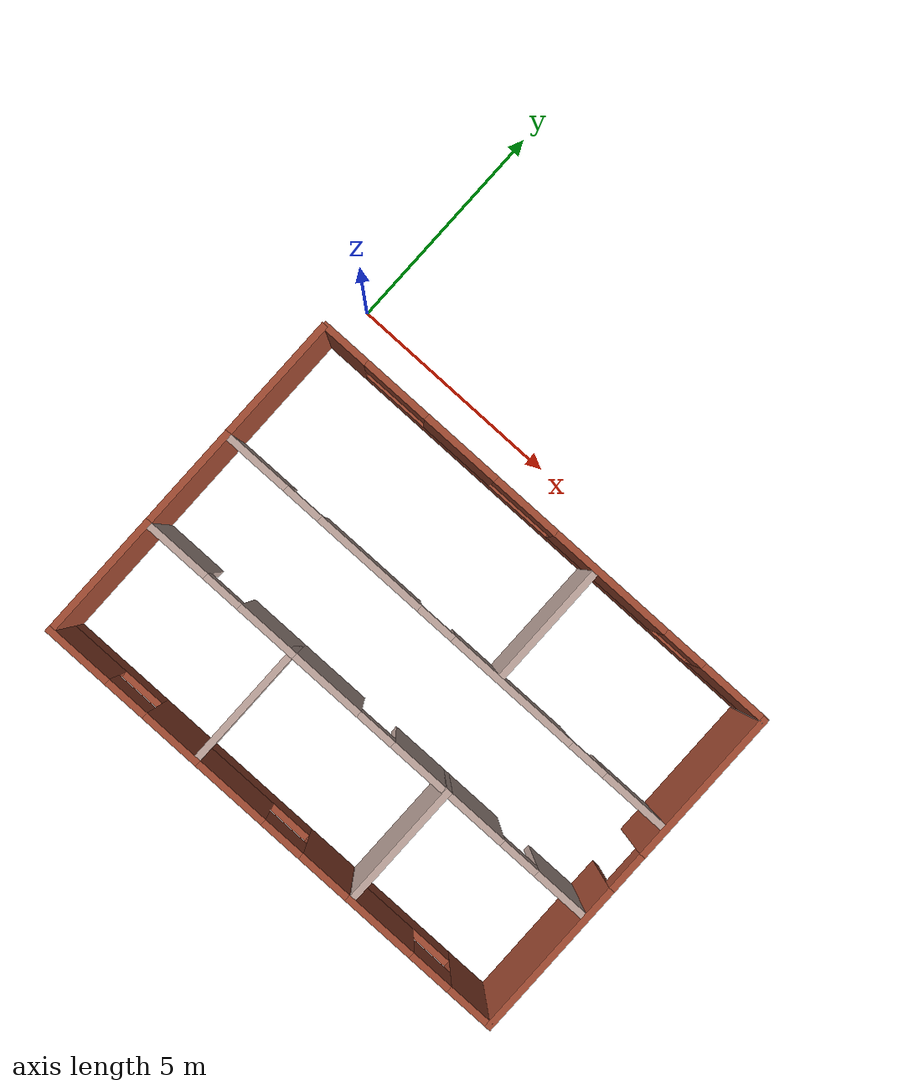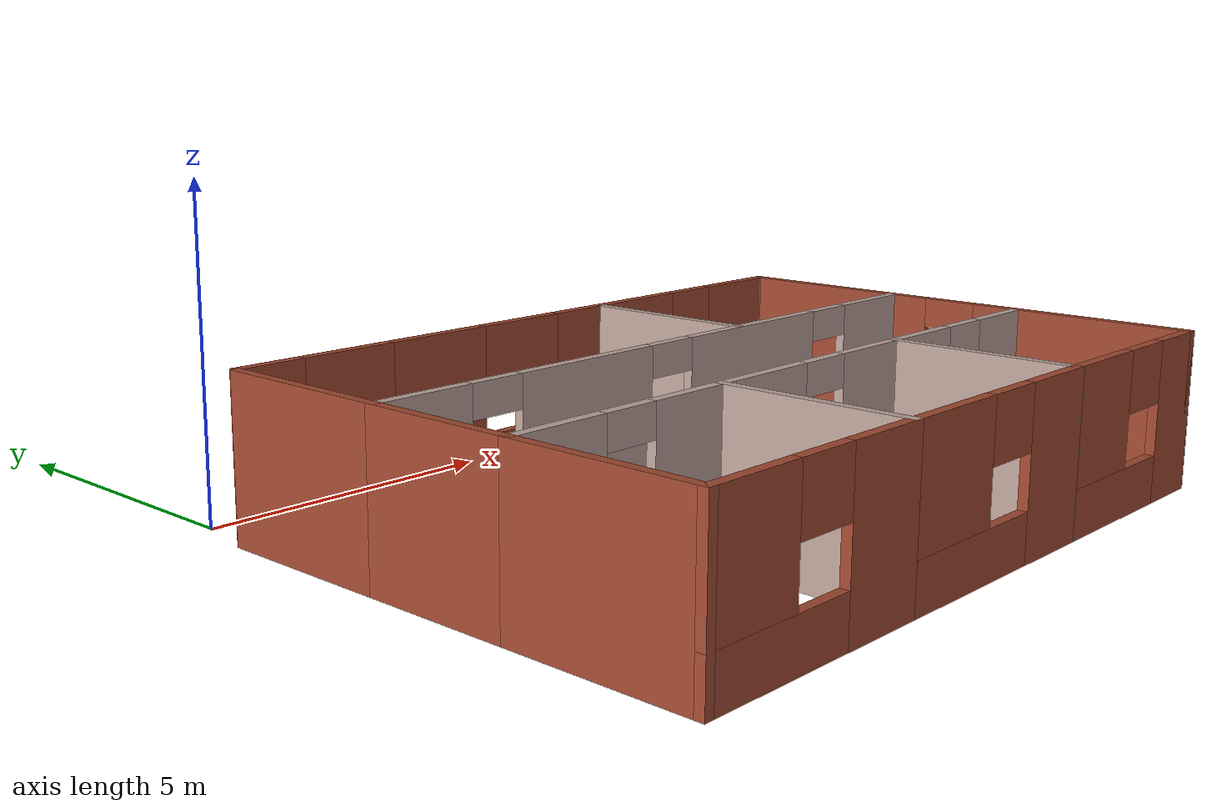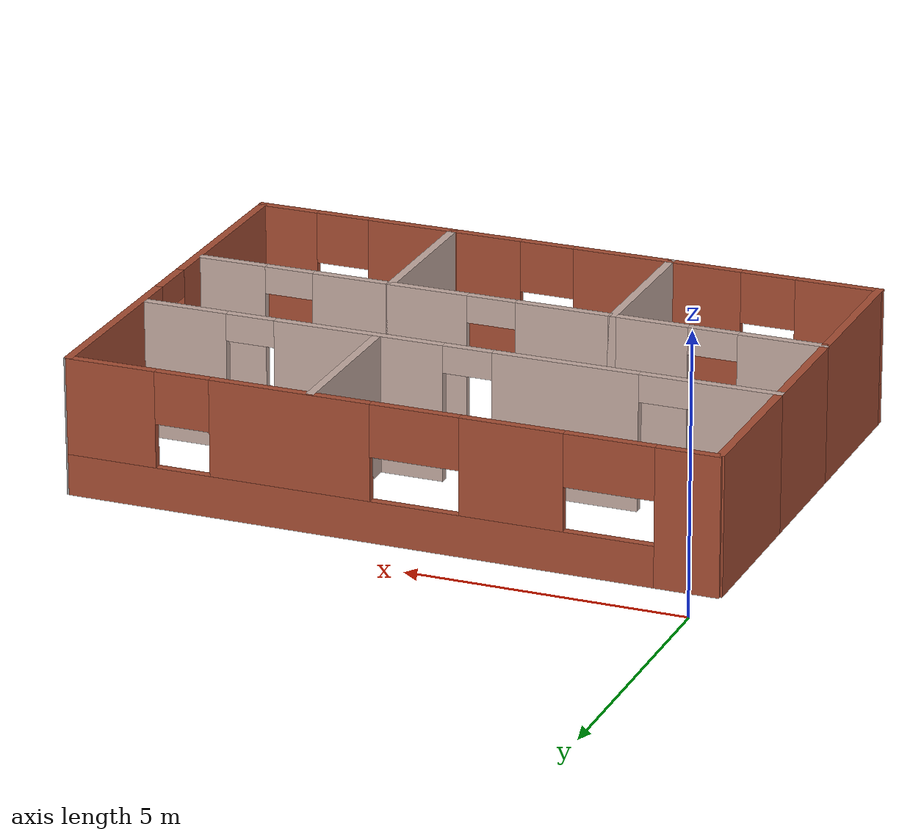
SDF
<?xml version='1.0'?>
<sdf version='1.6'>
  <model name='building1'>
    <pose frame=''>5.68259 -5.05298 0 0 -0 0</pose>
    <link name='Wall_0'>
      <pose frame=''>5.83622 -0.00604 0 0 0 -1.5708</pose>
      <visual name='Wall_0_Visual_0'>
        <pose frame=''>-2.28969 0 1.25 0 -0 0</pose>
        <geometry>
          <box>
            <size>3.67061 0.15 2.5</size>
          </box>
        </geometry>
        <material>
          <script>
            <uri>file://media/materials/scripts/gazebo.material</uri>
            <name>Gazebo/Bricks</name>
          </script>
          <ambient>1 1 1 1</ambient>
        </material>
        <meta>
          <layer>0</layer>
        </meta>
      </visual>
      <collision name='Wall_0_Collision_0'>
        <geometry>
          <box>
            <size>3.67061 0.15 2.5</size>
          </box>
        </geometry>
        <pose frame=''>-2.28969 0 1.25 0 -0 0</pose>
      </collision>
      <visual name='Wall_0_Visual_1'>
        <pose frame=''>2.28531 0 1.25 0 -0 0</pose>
        <geometry>
          <box>
            <size>3.67939 0.15 2.5</size>
          </box>
        </geometry>
        <material>
          <script>
            <uri>file://media/materials/scripts/gazebo.material</uri>
            <name>Gazebo/Bricks</name>
          </script>
          <ambient>1 1 1 1</ambient>
        </material>
        <meta>
          <layer>0</layer>
        </meta>
      </visual>
      <collision name='Wall_0_Collision_1'>
        <geometry>
          <box>
            <size>3.67939 0.15 2.5</size>
          </box>
        </geometry>
        <pose frame=''>2.28531 0 1.25 0 -0 0</pose>
      </collision>
      <visual name='Wall_0_Visual_2'>
        <pose frame=''>-0.004386 0 2.25 0 -0 0</pose>
        <geometry>
          <box>
            <size>0.9 0.15 0.5</size>
          </box>
        </geometry>
        <material>
          <script>
            <uri>file://media/materials/scripts/gazebo.material</uri>
            <name>Gazebo/Bricks</name>
          </script>
          <ambient>1 1 1 1</ambient>
        </material>
        <meta>
          <layer>0</layer>
        </meta>
      </visual>
      <collision name='Wall_0_Collision_2'>
        <geometry>
          <box>
            <size>0.9 0.15 0.5</size>
          </box>
        </geometry>
        <pose frame=''>-0.004386 0 2.25 0 -0 0</pose>
      </collision>
    </link>
    <link name='Wall_11'>
      <pose frame=''>-3.91122 -4.05604 0 0 -0 3.14159</pose>
      <visual name='Wall_11_Visual_0'>
        <pose frame=''>-1.29336 0 1.25 0 -0 0</pose>
        <geometry>
          <box>
            <size>1.41328 0.15 2.5</size>
          </box>
        </geometry>
        <material>
          <script>
            <uri>file://media/materials/scripts/gazebo.material</uri>
            <name>Gazebo/Bricks</name>
          </script>
          <ambient>1 1 1 1</ambient>
        </material>
        <meta>
          <layer>0</layer>
        </meta>
      </visual>
      <collision name='Wall_11_Collision_0'>
        <geometry>
          <box>
            <size>1.41328 0.15 2.5</size>
          </box>
        </geometry>
        <pose frame=''>-1.29336 0 1.25 0 -0 0</pose>
      </collision>
      <visual name='Wall_11_Visual_1'>
        <pose frame=''>0.706639 0 0.375 0 -0 0</pose>
        <geometry>
          <box>
            <size>2.58672 0.15 0.75</size>
          </box>
        </geometry>
        <material>
          <script>
            <uri>file://media/materials/scripts/gazebo.material</uri>
            <name>Gazebo/Bricks</name>
          </script>
          <ambient>1 1 1 1</ambient>
        </material>
        <meta>
          <layer>0</layer>
        </meta>
      </visual>
      <collision name='Wall_11_Collision_1'>
        <geometry>
          <box>
            <size>2.58672 0.15 0.75</size>
          </box>
        </geometry>
        <pose frame=''>0.706639 0 0.375 0 -0 0</pose>
      </collision>
      <visual name='Wall_11_Visual_2'>
        <pose frame=''>1.20664 0 1.625 0 -0 0</pose>
        <geometry>
          <box>
            <size>1.58672 0.15 1.75</size>
          </box>
        </geometry>
        <material>
          <script>
            <uri>file://media/materials/scripts/gazebo.material</uri>
            <name>Gazebo/Bricks</name>
          </script>
          <ambient>1 1 1 1</ambient>
        </material>
        <meta>
          <layer>0</layer>
        </meta>
      </visual>
      <collision name='Wall_11_Collision_2'>
        <geometry>
          <box>
            <size>1.58672 0.15 1.75</size>
          </box>
        </geometry>
        <pose frame=''>1.20664 0 1.625 0 -0 0</pose>
      </collision>
      <visual name='Wall_11_Visual_3'>
        <pose frame=''>-0.086722 0 2.025 0 -0 0</pose>
        <geometry>
          <box>
            <size>1 0.15 0.95</size>
          </box>
        </geometry>
        <material>
          <script>
            <uri>file://media/materials/scripts/gazebo.material</uri>
            <name>Gazebo/Bricks</name>
          </script>
          <ambient>1 1 1 1</ambient>
        </material>
        <meta>
          <layer>0</layer>
        </meta>
      </visual>
      <collision name='Wall_11_Collision_3'>
        <geometry>
          <box>
            <size>1 0.15 0.95</size>
          </box>
        </geometry>
        <pose frame=''>-0.086722 0 2.025 0 -0 0</pose>
      </collision>
    </link>
    <link name='Wall_12'>
      <collision name='Wall_12_Collision'>
        <geometry>
          <box>
            <size>3 0.15 2.5</size>
          </box>
        </geometry>
        <pose frame=''>0 0 1.25 0 -0 0</pose>
      </collision>
      <visual name='Wall_12_Visual'>
        <pose frame=''>0 0 1.25 0 -0 0</pose>
        <geometry>
          <box>
            <size>3 0.15 2.5</size>
          </box>
        </geometry>
        <material>
          <script>
            <uri>file://media/materials/scripts/gazebo.material</uri>
            <name>Gazebo/Bricks</name>
          </script>
          <ambient>1 1 1 1</ambient>
        </material>
        <meta>
          <layer>0</layer>
        </meta>
      </visual>
      <pose frame=''>-5.83622 -2.63104 0 0 -0 1.5708</pose>
    </link>
    <link name='Wall_13'>
      <pose frame=''>-3.91122 -1.20604 0 0 -0 0</pose>
      <visual name='Wall_13_Visual_0'>
        <pose frame=''>-1.18164 0 1.25 0 -0 0</pose>
        <geometry>
          <box>
            <size>1.63672 0.15 2.5</size>
          </box>
        </geometry>
        <material>
          <script>
            <uri>file://media/materials/scripts/gazebo.material</uri>
            <name>Gazebo/Grey</name>
          </script>
          <ambient>0.760784 0.662745 0.627451 1</ambient>
        </material>
        <meta>
          <layer>0</layer>
        </meta>
      </visual>
      <collision name='Wall_13_Collision_0'>
        <geometry>
          <box>
            <size>1.63672 0.15 2.5</size>
          </box>
        </geometry>
        <pose frame=''>-1.18164 0 1.25 0 -0 0</pose>
      </collision>
      <visual name='Wall_13_Visual_1'>
        <pose frame=''>1.26836 0 1.25 0 -0 0</pose>
        <geometry>
          <box>
            <size>1.46328 0.15 2.5</size>
          </box>
        </geometry>
        <material>
          <script>
            <uri>file://media/materials/scripts/gazebo.material</uri>
            <name>Gazebo/Grey</name>
          </script>
          <ambient>0.760784 0.662745 0.627451 1</ambient>
        </material>
        <meta>
          <layer>0</layer>
        </meta>
      </visual>
      <collision name='Wall_13_Collision_1'>
        <geometry>
          <box>
            <size>1.46328 0.15 2.5</size>
          </box>
        </geometry>
        <pose frame=''>1.26836 0 1.25 0 -0 0</pose>
      </collision>
      <visual name='Wall_13_Visual_2'>
        <pose frame=''>0.086722 0 2.25 0 -0 0</pose>
        <geometry>
          <box>
            <size>0.9 0.15 0.5</size>
          </box>
        </geometry>
        <material>
          <script>
            <uri>file://media/materials/scripts/gazebo.material</uri>
            <name>Gazebo/Grey</name>
          </script>
          <ambient>0.760784 0.662745 0.627451 1</ambient>
        </material>
        <meta>
          <layer>0</layer>
        </meta>
      </visual>
      <collision name='Wall_13_Collision_2'>
        <geometry>
          <box>
            <size>0.9 0.15 0.5</size>
          </box>
        </geometry>
        <pose frame=''>0.086722 0 2.25 0 -0 0</pose>
      </collision>
    </link>
    <link name='Wall_15'>
      <collision name='Wall_15_Collision'>
        <geometry>
          <box>
            <size>2.5 0.15 2.5</size>
          </box>
        </geometry>
        <pose frame=''>0 0 1.25 0 -0 0</pose>
      </collision>
      <visual name='Wall_15_Visual'>
        <pose frame=''>0 0 1.25 0 -0 0</pose>
        <geometry>
          <box>
            <size>2.5 0.15 2.5</size>
          </box>
        </geometry>
        <material>
          <script>
            <uri>file://media/materials/scripts/gazebo.material</uri>
            <name>Gazebo/Bricks</name>
          </script>
          <ambient>1 1 1 1</ambient>
        </material>
        <meta>
          <layer>0</layer>
        </meta>
      </visual>
      <pose frame=''>-5.83622 -0.03104 0 0 -0 1.5708</pose>
    </link>
    <link name='Wall_16'>
      <pose frame=''>-0.036216 1.14396 0 0 -0 0</pose>
      <visual name='Wall_16_Visual_0'>
        <pose frame=''>-5.04789 0 1.25 0 -0 0</pose>
        <geometry>
          <box>
            <size>1.65421 0.15 2.5</size>
          </box>
        </geometry>
        <material>
          <script>
            <uri>file://media/materials/scripts/gazebo.material</uri>
            <name>Gazebo/Grey</name>
          </script>
          <ambient>0.760784 0.662745 0.627451 1</ambient>
        </material>
        <meta>
          <layer>0</layer>
        </meta>
      </visual>
      <collision name='Wall_16_Collision_0'>
        <geometry>
          <box>
            <size>1.65421 0.15 2.5</size>
          </box>
        </geometry>
        <pose frame=''>-5.04789 0 1.25 0 -0 0</pose>
      </collision>
      <visual name='Wall_16_Visual_1'>
        <pose frame=''>-1.99555 0 1.25 0 -0 0</pose>
        <geometry>
          <box>
            <size>2.65048 0.15 2.5</size>
          </box>
        </geometry>
        <material>
          <script>
            <uri>file://media/materials/scripts/gazebo.material</uri>
            <name>Gazebo/Grey</name>
          </script>
          <ambient>0.760784 0.662745 0.627451 1</ambient>
        </material>
        <meta>
          <layer>0</layer>
        </meta>
      </visual>
      <collision name='Wall_16_Collision_1'>
        <geometry>
          <box>
            <size>2.65048 0.15 2.5</size>
          </box>
        </geometry>
        <pose frame=''>-1.99555 0 1.25 0 -0 0</pose>
      </collision>
      <visual name='Wall_16_Visual_2'>
        <pose frame=''>1.79105 0 1.25 0 -0 0</pose>
        <geometry>
          <box>
            <size>3.12271 0.15 2.5</size>
          </box>
        </geometry>
        <material>
          <script>
            <uri>file://media/materials/scripts/gazebo.material</uri>
            <name>Gazebo/Grey</name>
          </script>
          <ambient>0.760784 0.662745 0.627451 1</ambient>
        </material>
        <meta>
          <layer>0</layer>
        </meta>
      </visual>
      <collision name='Wall_16_Collision_2'>
        <geometry>
          <box>
            <size>3.12271 0.15 2.5</size>
          </box>
        </geometry>
        <pose frame=''>1.79105 0 1.25 0 -0 0</pose>
      </collision>
      <visual name='Wall_16_Visual_3'>
        <pose frame=''>5.0637 0 1.25 0 -0 0</pose>
        <geometry>
          <box>
            <size>1.62259 0.15 2.5</size>
          </box>
        </geometry>
        <material>
          <script>
            <uri>file://media/materials/scripts/gazebo.material</uri>
            <name>Gazebo/Grey</name>
          </script>
          <ambient>0.760784 0.662745 0.627451 1</ambient>
        </material>
        <meta>
          <layer>0</layer>
        </meta>
      </visual>
      <collision name='Wall_16_Collision_3'>
        <geometry>
          <box>
            <size>1.62259 0.15 2.5</size>
          </box>
        </geometry>
        <pose frame=''>5.0637 0 1.25 0 -0 0</pose>
      </collision>
      <visual name='Wall_16_Visual_4'>
        <pose frame=''>-3.77079 0 2.25 0 -0 0</pose>
        <geometry>
          <box>
            <size>0.9 0.15 0.5</size>
          </box>
        </geometry>
        <material>
          <script>
            <uri>file://media/materials/scripts/gazebo.material</uri>
            <name>Gazebo/Grey</name>
          </script>
          <ambient>0.760784 0.662745 0.627451 1</ambient>
        </material>
        <meta>
          <layer>0</layer>
        </meta>
      </visual>
      <collision name='Wall_16_Collision_4'>
        <geometry>
          <box>
            <size>0.9 0.15 0.5</size>
          </box>
        </geometry>
        <pose frame=''>-3.77079 0 2.25 0 -0 0</pose>
      </collision>
      <visual name='Wall_16_Visual_5'>
        <pose frame=''>-0.220305 0 2.25 0 -0 0</pose>
        <geometry>
          <box>
            <size>0.9 0.15 0.5</size>
          </box>
        </geometry>
        <material>
          <script>
            <uri>file://media/materials/scripts/gazebo.material</uri>
            <name>Gazebo/Grey</name>
          </script>
          <ambient>0.760784 0.662745 0.627451 1</ambient>
        </material>
        <meta>
          <layer>0</layer>
        </meta>
      </visual>
      <collision name='Wall_16_Collision_5'>
        <geometry>
          <box>
            <size>0.9 0.15 0.5</size>
          </box>
        </geometry>
        <pose frame=''>-0.220305 0 2.25 0 -0 0</pose>
      </collision>
      <visual name='Wall_16_Visual_6'>
        <pose frame=''>3.80241 0 2.25 0 -0 0</pose>
        <geometry>
          <box>
            <size>0.9 0.15 0.5</size>
          </box>
        </geometry>
        <material>
          <script>
            <uri>file://media/materials/scripts/gazebo.material</uri>
            <name>Gazebo/Grey</name>
          </script>
          <ambient>0.760784 0.662745 0.627451 1</ambient>
        </material>
        <meta>
          <layer>0</layer>
        </meta>
      </visual>
      <collision name='Wall_16_Collision_6'>
        <geometry>
          <box>
            <size>0.9 0.15 0.5</size>
          </box>
        </geometry>
        <pose frame=''>3.80241 0 2.25 0 -0 0</pose>
      </collision>
    </link>
    <link name='Wall_22'>
      <collision name='Wall_22_Collision'>
        <geometry>
          <box>
            <size>3 0.15 2.5</size>
          </box>
        </geometry>
        <pose frame=''>0 0 1.25 0 -0 0</pose>
      </collision>
      <visual name='Wall_22_Visual'>
        <pose frame=''>0 0 1.25 0 -0 0</pose>
        <geometry>
          <box>
            <size>3 0.15 2.5</size>
          </box>
        </geometry>
        <material>
          <script>
            <uri>file://media/materials/scripts/gazebo.material</uri>
            <name>Gazebo/Bricks</name>
          </script>
          <ambient>1 1 1 1</ambient>
        </material>
        <meta>
          <layer>0</layer>
        </meta>
      </visual>
      <pose frame=''>-5.83622 2.56896 0 0 -0 1.5708</pose>
    </link>
    <link name='Wall_24'>
      <collision name='Wall_24_Collision'>
        <geometry>
          <box>
            <size>0.15 0.15 2.5</size>
          </box>
        </geometry>
        <pose frame=''>0 0 1.25 0 -0 0</pose>
      </collision>
      <visual name='Wall_24_Visual'>
        <pose frame=''>0 0 1.25 0 -0 0</pose>
        <geometry>
          <box>
            <size>0.15 0.15 2.5</size>
          </box>
        </geometry>
        <material>
          <script>
            <uri>file://media/materials/scripts/gazebo.material</uri>
            <name>Gazebo/Grey</name>
          </script>
          <ambient>1 1 1 1</ambient>
        </material>
        <meta>
          <layer>0</layer>
        </meta>
      </visual>
      <pose frame=''>5.83622 4.04396 0 0 -0 0</pose>
    </link>
    <link name='Wall_28'>
      <pose frame=''>-0.000871 4.05604 0 0 -0 0</pose>
      <visual name='Wall_28_Visual_0'>
        <pose frame=''>-5.30178 0 1.25 0 -0 0</pose>
        <geometry>
          <box>
            <size>1.14644 0.15 2.5</size>
          </box>
        </geometry>
        <material>
          <script>
            <uri>file://media/materials/scripts/gazebo.material</uri>
            <name>Gazebo/Bricks</name>
          </script>
          <ambient>1 1 1 1</ambient>
        </material>
        <meta>
          <layer>0</layer>
        </meta>
      </visual>
      <collision name='Wall_28_Collision_0'>
        <geometry>
          <box>
            <size>1.14644 0.15 2.5</size>
          </box>
        </geometry>
        <pose frame=''>-5.30178 0 1.25 0 -0 0</pose>
      </collision>
      <visual name='Wall_28_Visual_1'>
        <pose frame=''>0.573218 0 0.375 0 -0 0</pose>
        <geometry>
          <box>
            <size>10.6036 0.15 0.75</size>
          </box>
        </geometry>
        <material>
          <script>
            <uri>file://media/materials/scripts/gazebo.material</uri>
            <name>Gazebo/Bricks</name>
          </script>
          <ambient>1 1 1 1</ambient>
        </material>
        <meta>
          <layer>0</layer>
        </meta>
      </visual>
      <collision name='Wall_28_Collision_1'>
        <geometry>
          <box>
            <size>10.6036 0.15 0.75</size>
          </box>
        </geometry>
        <pose frame=''>0.573218 0 0.375 0 -0 0</pose>
      </collision>
      <visual name='Wall_28_Visual_2'>
        <pose frame=''>-2.20579 0 1.625 0 -0 0</pose>
        <geometry>
          <box>
            <size>1.84554 0.15 1.75</size>
          </box>
        </geometry>
        <material>
          <script>
            <uri>file://media/materials/scripts/gazebo.material</uri>
            <name>Gazebo/Bricks</name>
          </script>
          <ambient>1 1 1 1</ambient>
        </material>
        <meta>
          <layer>0</layer>
        </meta>
      </visual>
      <collision name='Wall_28_Collision_2'>
        <geometry>
          <box>
            <size>1.84554 0.15 1.75</size>
          </box>
        </geometry>
        <pose frame=''>-2.20579 0 1.625 0 -0 0</pose>
      </collision>
      <visual name='Wall_28_Visual_3'>
        <pose frame=''>1.77453 0 1.625 0 -0 0</pose>
        <geometry>
          <box>
            <size>2.91511 0.15 1.75</size>
          </box>
        </geometry>
        <material>
          <script>
            <uri>file://media/materials/scripts/gazebo.material</uri>
            <name>Gazebo/Bricks</name>
          </script>
          <ambient>1 1 1 1</ambient>
        </material>
        <meta>
          <layer>0</layer>
        </meta>
      </visual>
      <collision name='Wall_28_Collision_3'>
        <geometry>
          <box>
            <size>2.91511 0.15 1.75</size>
          </box>
        </geometry>
        <pose frame=''>1.77453 0 1.625 0 -0 0</pose>
      </collision>
      <visual name='Wall_28_Visual_4'>
        <pose frame=''>5.05354 0 1.625 0 -0 0</pose>
        <geometry>
          <box>
            <size>1.64292 0.15 1.75</size>
          </box>
        </geometry>
        <material>
          <script>
            <uri>file://media/materials/scripts/gazebo.material</uri>
            <name>Gazebo/Bricks</name>
          </script>
          <ambient>1 1 1 1</ambient>
        </material>
        <meta>
          <layer>0</layer>
        </meta>
      </visual>
      <collision name='Wall_28_Collision_4'>
        <geometry>
          <box>
            <size>1.64292 0.15 1.75</size>
          </box>
        </geometry>
        <pose frame=''>5.05354 0 1.625 0 -0 0</pose>
      </collision>
      <visual name='Wall_28_Visual_5'>
        <pose frame=''>-3.92856 0 2.025 0 -0 0</pose>
        <geometry>
          <box>
            <size>1.6 0.15 0.95</size>
          </box>
        </geometry>
        <material>
          <script>
            <uri>file://media/materials/scripts/gazebo.material</uri>
            <name>Gazebo/Bricks</name>
          </script>
          <ambient>1 1 1 1</ambient>
        </material>
        <meta>
          <layer>0</layer>
        </meta>
      </visual>
      <collision name='Wall_28_Collision_5'>
        <geometry>
          <box>
            <size>1.6 0.15 0.95</size>
          </box>
        </geometry>
        <pose frame=''>-3.92856 0 2.025 0 -0 0</pose>
      </collision>
      <visual name='Wall_28_Visual_6'>
        <pose frame=''>-0.483021 0 2.025 0 -0 0</pose>
        <geometry>
          <box>
            <size>1.6 0.15 0.95</size>
          </box>
        </geometry>
        <material>
          <script>
            <uri>file://media/materials/scripts/gazebo.material</uri>
            <name>Gazebo/Bricks</name>
          </script>
          <ambient>1 1 1 1</ambient>
        </material>
        <meta>
          <layer>0</layer>
        </meta>
      </visual>
      <collision name='Wall_28_Collision_6'>
        <geometry>
          <box>
            <size>1.6 0.15 0.95</size>
          </box>
        </geometry>
        <pose frame=''>-0.483021 0 2.025 0 -0 0</pose>
      </collision>
      <visual name='Wall_28_Visual_7'>
        <pose frame=''>3.73208 0 2.025 0 -0 0</pose>
        <geometry>
          <box>
            <size>1 0.15 0.95</size>
          </box>
        </geometry>
        <material>
          <script>
            <uri>file://media/materials/scripts/gazebo.material</uri>
            <name>Gazebo/Bricks</name>
          </script>
          <ambient>1 1 1 1</ambient>
        </material>
        <meta>
          <layer>0</layer>
        </meta>
      </visual>
      <collision name='Wall_28_Collision_7'>
        <geometry>
          <box>
            <size>1 0.15 0.95</size>
          </box>
        </geometry>
        <pose frame=''>3.73208 0 2.025 0 -0 0</pose>
      </collision>
    </link>
    <link name='Wall_3'>
      <pose frame=''>3.97243 -4.05604 0 0 -0 3.14159</pose>
      <visual name='Wall_3_Visual_0'>
        <pose frame=''>-1.35239 0 1.25 0 -0 0</pose>
        <geometry>
          <box>
            <size>1.13781 0.15 2.5</size>
          </box>
        </geometry>
        <material>
          <script>
            <uri>file://media/materials/scripts/gazebo.material</uri>
            <name>Gazebo/Bricks</name>
          </script>
          <ambient>1 1 1 1</ambient>
        </material>
        <meta>
          <layer>0</layer>
        </meta>
      </visual>
      <collision name='Wall_3_Collision_0'>
        <geometry>
          <box>
            <size>1.13781 0.15 2.5</size>
          </box>
        </geometry>
        <pose frame=''>-1.35239 0 1.25 0 -0 0</pose>
      </collision>
      <visual name='Wall_3_Visual_1'>
        <pose frame=''>0.568905 0 0.375 0 -0 0</pose>
        <geometry>
          <box>
            <size>2.70478 0.15 0.75</size>
          </box>
        </geometry>
        <material>
          <script>
            <uri>file://media/materials/scripts/gazebo.material</uri>
            <name>Gazebo/Bricks</name>
          </script>
          <ambient>1 1 1 1</ambient>
        </material>
        <meta>
          <layer>0</layer>
        </meta>
      </visual>
      <collision name='Wall_3_Collision_1'>
        <geometry>
          <box>
            <size>2.70478 0.15 0.75</size>
          </box>
        </geometry>
        <pose frame=''>0.568905 0 0.375 0 -0 0</pose>
      </collision>
      <visual name='Wall_3_Visual_2'>
        <pose frame=''>1.0689 0 1.625 0 -0 0</pose>
        <geometry>
          <box>
            <size>1.70478 0.15 1.75</size>
          </box>
        </geometry>
        <material>
          <script>
            <uri>file://media/materials/scripts/gazebo.material</uri>
            <name>Gazebo/Bricks</name>
          </script>
          <ambient>1 1 1 1</ambient>
        </material>
        <meta>
          <layer>0</layer>
        </meta>
      </visual>
      <collision name='Wall_3_Collision_2'>
        <geometry>
          <box>
            <size>1.70478 0.15 1.75</size>
          </box>
        </geometry>
        <pose frame=''>1.0689 0 1.625 0 -0 0</pose>
      </collision>
      <visual name='Wall_3_Visual_3'>
        <pose frame=''>-0.283484 0 2.025 0 -0 0</pose>
        <geometry>
          <box>
            <size>1 0.15 0.95</size>
          </box>
        </geometry>
        <material>
          <script>
            <uri>file://media/materials/scripts/gazebo.material</uri>
            <name>Gazebo/Bricks</name>
          </script>
          <ambient>1 1 1 1</ambient>
        </material>
        <meta>
          <layer>0</layer>
        </meta>
      </visual>
      <collision name='Wall_3_Collision_3'>
        <geometry>
          <box>
            <size>1 0.15 0.95</size>
          </box>
        </geometry>
        <pose frame=''>-0.283484 0 2.025 0 -0 0</pose>
      </collision>
    </link>
    <link name='Wall_30'>
      <collision name='Wall_30_Collision'>
        <geometry>
          <box>
            <size>3 0.15 2.5</size>
          </box>
        </geometry>
        <pose frame=''>0 0 1.25 0 -0 0</pose>
      </collision>
      <visual name='Wall_30_Visual'>
        <pose frame=''>0 0 1.25 0 -0 0</pose>
        <geometry>
          <box>
            <size>3 0.15 2.5</size>
          </box>
        </geometry>
        <material>
          <script>
            <uri>file://media/materials/scripts/gazebo.material</uri>
            <name>Gazebo/Grey</name>
          </script>
          <ambient>0.760784 0.662745 0.627451 1</ambient>
        </material>
        <meta>
          <layer>0</layer>
        </meta>
      </visual>
      <pose frame=''>1.40504 2.59518 0 0 -0 1.5708</pose>
    </link>
    <link name='Wall_4'>
      <collision name='Wall_4_Collision'>
        <geometry>
          <box>
            <size>3 0.15 2.5</size>
          </box>
        </geometry>
        <pose frame=''>0 0 1.25 0 -0 0</pose>
      </collision>
      <visual name='Wall_4_Visual'>
        <pose frame=''>0 0 1.25 0 -0 0</pose>
        <geometry>
          <box>
            <size>3 0.15 2.5</size>
          </box>
        </geometry>
        <material>
          <script>
            <uri>file://media/materials/scripts/gazebo.material</uri>
            <name>Gazebo/Grey</name>
          </script>
          <ambient>0.760784 0.662745 0.627451 1</ambient>
        </material>
        <meta>
          <layer>0</layer>
        </meta>
      </visual>
      <pose frame=''>2.14363 -2.63104 0 0 -0 1.5708</pose>
    </link>
    <link name='Wall_5'>
      <pose frame=''>3.91996 -1.20604 0 0 -0 0</pose>
      <visual name='Wall_5_Visual_0'>
        <pose frame=''>-1.08763 0 1.25 0 -0 0</pose>
        <geometry>
          <box>
            <size>1.56239 0.15 2.5</size>
          </box>
        </geometry>
        <material>
          <script>
            <uri>file://media/materials/scripts/gazebo.material</uri>
            <name>Gazebo/Grey</name>
          </script>
          <ambient>0.760784 0.662745 0.627451 1</ambient>
        </material>
        <meta>
          <layer>0</layer>
        </meta>
      </visual>
      <collision name='Wall_5_Collision_0'>
        <geometry>
          <box>
            <size>1.56239 0.15 2.5</size>
          </box>
        </geometry>
        <pose frame=''>-1.08763 0 1.25 0 -0 0</pose>
      </collision>
      <visual name='Wall_5_Visual_1'>
        <pose frame=''>1.23119 0 1.25 0 -0 0</pose>
        <geometry>
          <box>
            <size>1.27526 0.15 2.5</size>
          </box>
        </geometry>
        <material>
          <script>
            <uri>file://media/materials/scripts/gazebo.material</uri>
            <name>Gazebo/Grey</name>
          </script>
          <ambient>0.760784 0.662745 0.627451 1</ambient>
        </material>
        <meta>
          <layer>0</layer>
        </meta>
      </visual>
      <collision name='Wall_5_Collision_1'>
        <geometry>
          <box>
            <size>1.27526 0.15 2.5</size>
          </box>
        </geometry>
        <pose frame=''>1.23119 0 1.25 0 -0 0</pose>
      </collision>
      <visual name='Wall_5_Visual_2'>
        <pose frame=''>0.143564 0 2.25 0 -0 0</pose>
        <geometry>
          <box>
            <size>0.9 0.15 0.5</size>
          </box>
        </geometry>
        <material>
          <script>
            <uri>file://media/materials/scripts/gazebo.material</uri>
            <name>Gazebo/Grey</name>
          </script>
          <ambient>0.760784 0.662745 0.627451 1</ambient>
        </material>
        <meta>
          <layer>0</layer>
        </meta>
      </visual>
      <collision name='Wall_5_Collision_2'>
        <geometry>
          <box>
            <size>0.9 0.15 0.5</size>
          </box>
        </geometry>
        <pose frame=''>0.143564 0 2.25 0 -0 0</pose>
      </collision>
    </link>
    <link name='Wall_7'>
      <pose frame=''>0.06996 -4.05604 0 0 -0 3.14159</pose>
      <visual name='Wall_7_Visual_0'>
        <pose frame=''>-1.44093 0 1.25 0 -0 0</pose>
        <geometry>
          <box>
            <size>1.38048 0.15 2.5</size>
          </box>
        </geometry>
        <material>
          <script>
            <uri>file://media/materials/scripts/gazebo.material</uri>
            <name>Gazebo/Bricks</name>
          </script>
          <ambient>1 1 1 1</ambient>
        </material>
        <meta>
          <layer>0</layer>
        </meta>
      </visual>
      <collision name='Wall_7_Collision_0'>
        <geometry>
          <box>
            <size>1.38048 0.15 2.5</size>
          </box>
        </geometry>
        <pose frame=''>-1.44093 0 1.25 0 -0 0</pose>
      </collision>
      <visual name='Wall_7_Visual_1'>
        <pose frame=''>0.690242 0 0.375 0 -0 0</pose>
        <geometry>
          <box>
            <size>2.88187 0.15 0.75</size>
          </box>
        </geometry>
        <material>
          <script>
            <uri>file://media/materials/scripts/gazebo.material</uri>
            <name>Gazebo/Bricks</name>
          </script>
          <ambient>1 1 1 1</ambient>
        </material>
        <meta>
          <layer>0</layer>
        </meta>
      </visual>
      <collision name='Wall_7_Collision_1'>
        <geometry>
          <box>
            <size>2.88187 0.15 0.75</size>
          </box>
        </geometry>
        <pose frame=''>0.690242 0 0.375 0 -0 0</pose>
      </collision>
      <visual name='Wall_7_Visual_2'>
        <pose frame=''>1.19024 0 1.625 0 -0 0</pose>
        <geometry>
          <box>
            <size>1.88187 0.15 1.75</size>
          </box>
        </geometry>
        <material>
          <script>
            <uri>file://media/materials/scripts/gazebo.material</uri>
            <name>Gazebo/Bricks</name>
          </script>
          <ambient>1 1 1 1</ambient>
        </material>
        <meta>
          <layer>0</layer>
        </meta>
      </visual>
      <collision name='Wall_7_Collision_2'>
        <geometry>
          <box>
            <size>1.88187 0.15 1.75</size>
          </box>
        </geometry>
        <pose frame=''>1.19024 0 1.625 0 -0 0</pose>
      </collision>
      <visual name='Wall_7_Visual_3'>
        <pose frame=''>-0.250691 0 2.025 0 -0 0</pose>
        <geometry>
          <box>
            <size>1 0.15 0.95</size>
          </box>
        </geometry>
        <material>
          <script>
            <uri>file://media/materials/scripts/gazebo.material</uri>
            <name>Gazebo/Bricks</name>
          </script>
          <ambient>1 1 1 1</ambient>
        </material>
        <meta>
          <layer>0</layer>
        </meta>
      </visual>
      <collision name='Wall_7_Collision_3'>
        <geometry>
          <box>
            <size>1 0.15 0.95</size>
          </box>
        </geometry>
        <pose frame=''>-0.250691 0 2.025 0 -0 0</pose>
      </collision>
    </link>
    <link name='Wall_8'>
      <collision name='Wall_8_Collision'>
        <geometry>
          <box>
            <size>3 0.15 2.5</size>
          </box>
        </geometry>
        <pose frame=''>0 0 1.25 0 -0 0</pose>
      </collision>
      <visual name='Wall_8_Visual'>
        <pose frame=''>0 0 1.25 0 -0 0</pose>
        <geometry>
          <box>
            <size>3 0.15 2.5</size>
          </box>
        </geometry>
        <material>
          <script>
            <uri>file://media/materials/scripts/gazebo.material</uri>
            <name>Gazebo/Grey</name>
          </script>
          <ambient>0.760784 0.662745 0.627451 1</ambient>
        </material>
        <meta>
          <layer>0</layer>
        </meta>
      </visual>
      <pose frame=''>-1.98622 -2.63104 0 0 -0 1.5708</pose>
    </link>
    <link name='Wall_9'>
      <pose frame=''>0.06996 -1.20604 0 0 -0 0</pose>
      <visual name='Wall_9_Visual_0'>
        <pose frame=''>-1.20022 0 1.25 0 -0 0</pose>
        <geometry>
          <box>
            <size>1.86191 0.15 2.5</size>
          </box>
        </geometry>
        <material>
          <script>
            <uri>file://media/materials/scripts/gazebo.material</uri>
            <name>Gazebo/Grey</name>
          </script>
          <ambient>0.760784 0.662745 0.627451 1</ambient>
        </material>
        <meta>
          <layer>0</layer>
        </meta>
      </visual>
      <collision name='Wall_9_Collision_0'>
        <geometry>
          <box>
            <size>1.86191 0.15 2.5</size>
          </box>
        </geometry>
        <pose frame=''>-1.20022 0 1.25 0 -0 0</pose>
      </collision>
      <visual name='Wall_9_Visual_1'>
        <pose frame=''>1.38095 0 1.25 0 -0 0</pose>
        <geometry>
          <box>
            <size>1.50045 0.15 2.5</size>
          </box>
        </geometry>
        <material>
          <script>
            <uri>file://media/materials/scripts/gazebo.material</uri>
            <name>Gazebo/Grey</name>
          </script>
          <ambient>0.760784 0.662745 0.627451 1</ambient>
        </material>
        <meta>
          <layer>0</layer>
        </meta>
      </visual>
      <collision name='Wall_9_Collision_1'>
        <geometry>
          <box>
            <size>1.50045 0.15 2.5</size>
          </box>
        </geometry>
        <pose frame=''>1.38095 0 1.25 0 -0 0</pose>
      </collision>
      <visual name='Wall_9_Visual_2'>
        <pose frame=''>0.180731 0 2.25 0 -0 0</pose>
        <geometry>
          <box>
            <size>0.9 0.15 0.5</size>
          </box>
        </geometry>
        <material>
          <script>
            <uri>file://media/materials/scripts/gazebo.material</uri>
            <name>Gazebo/Grey</name>
          </script>
          <ambient>0.760784 0.662745 0.627451 1</ambient>
        </material>
        <meta>
          <layer>0</layer>
        </meta>
      </visual>
      <collision name='Wall_9_Collision_2'>
        <geometry>
          <box>
            <size>0.9 0.15 0.5</size>
          </box>
        </geometry>
        <pose frame=''>0.180731 0 2.25 0 -0 0</pose>
      </collision>
    </link>
    <static>1</static>
  </model>
</sdf>
